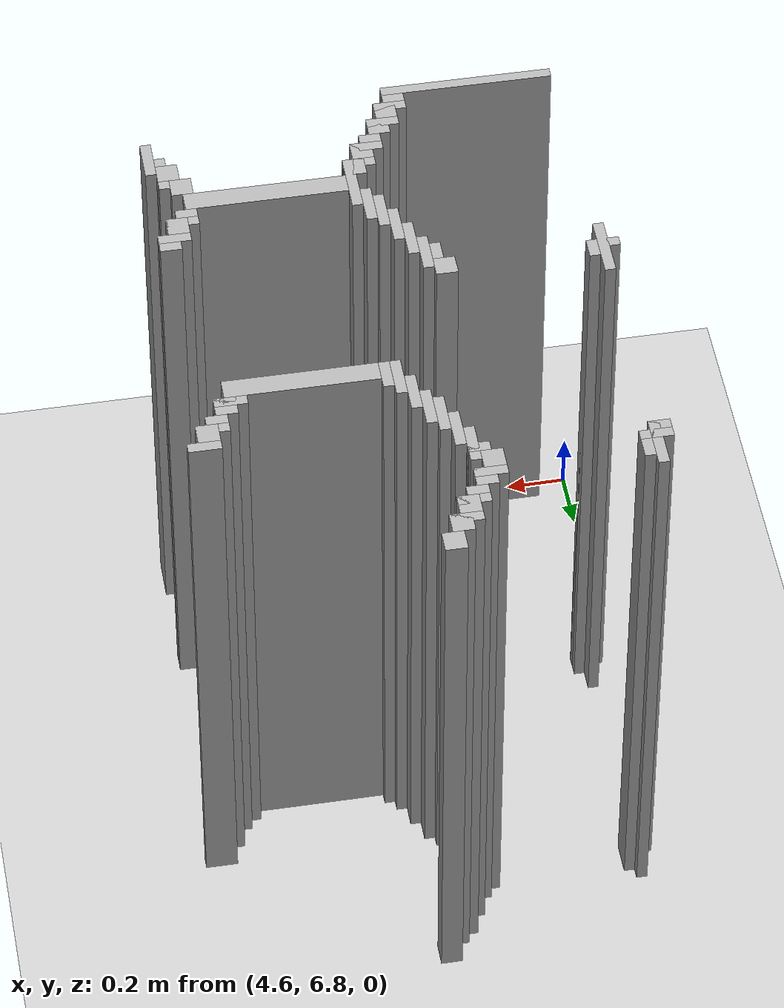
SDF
<sdf version="1.6">
 <world name="slam_world">
  <model name="ground_plane">
   <static>true</static>
   <link name="link">
    <collision name="collision">
     <geometry><plane><normal>0 0 1</normal><size>100 100</size></plane></geometry>
    </collision>
    <visual name="visual">
     <geometry><plane><normal>0 0 1</normal><size>100 100</size></plane></geometry>
     <material>
      <ambient>0.8 0.8 0.8 1</ambient>
      <diffuse>0.8 0.8 0.8 1</diffuse>
      <specular>0.8 0.8 0.8 1</specular>
     </material>
    </visual>
   </link>
  </model>
  <model name="wall_2872">
   <static>true</static>
   <pose>5.359628770301624 8.805104408352667 1.0 0 0 0</pose>
   <link name="link">
    <collision name="collision">
     <geometry><box><size>0.06960556844547564 0.06960556844547564 2.0</size></box></geometry>
    </collision>
    <visual name="visual">
     <geometry><box><size>0.06960556844547564 0.06960556844547564 2.0</size></box></geometry>
     <material><ambient>0.5 0.5 0.5 1</ambient><diffuse>0.7 0.7 0.7 1</diffuse></material>
    </visual>
   </link>
  </model>
  <model name="wall_2885">
   <static>true</static>
   <pose>5.324825986078886 8.735498839907192 1.0 0 0 0</pose>
   <link name="link">
    <collision name="collision">
     <geometry><box><size>0.06960556844547564 0.06960556844547564 2.0</size></box></geometry>
    </collision>
    <visual name="visual">
     <geometry><box><size>0.06960556844547564 0.06960556844547564 2.0</size></box></geometry>
     <material><ambient>0.5 0.5 0.5 1</ambient><diffuse>0.7 0.7 0.7 1</diffuse></material>
    </visual>
   </link>
  </model>
  <model name="wall_2898">
   <static>true</static>
   <pose>5.307424593967517 8.718097447795824 1.0 0 0 0</pose>
   <link name="link">
    <collision name="collision">
     <geometry><box><size>0.10440835266821345 0.03480278422273782 2.0</size></box></geometry>
    </collision>
    <visual name="visual">
     <geometry><box><size>0.10440835266821345 0.03480278422273782 2.0</size></box></geometry>
     <material><ambient>0.5 0.5 0.5 1</ambient><diffuse>0.7 0.7 0.7 1</diffuse></material>
    </visual>
   </link>
  </model>
  <model name="wall_2908">
   <static>true</static>
   <pose>5.290023201856148 8.665893271461716 1.0 0 0 0</pose>
   <link name="link">
    <collision name="collision">
     <geometry><box><size>0.06960556844547564 0.06960556844547564 2.0</size></box></geometry>
    </collision>
    <visual name="visual">
     <geometry><box><size>0.06960556844547564 0.06960556844547564 2.0</size></box></geometry>
     <material><ambient>0.5 0.5 0.5 1</ambient><diffuse>0.7 0.7 0.7 1</diffuse></material>
    </visual>
   </link>
  </model>
  <model name="wall_2920">
   <static>true</static>
   <pose>5.27262180974478 8.648491879350347 1.0 0 0 0</pose>
   <link name="link">
    <collision name="collision">
     <geometry><box><size>0.10440835266821345 0.03480278422273782 2.0</size></box></geometry>
    </collision>
    <visual name="visual">
     <geometry><box><size>0.10440835266821345 0.03480278422273782 2.0</size></box></geometry>
     <material><ambient>0.5 0.5 0.5 1</ambient><diffuse>0.7 0.7 0.7 1</diffuse></material>
    </visual>
   </link>
  </model>
  <model name="wall_2930">
   <static>true</static>
   <pose>5.25522041763341 8.61368909512761 1.0 0 0 0</pose>
   <link name="link">
    <collision name="collision">
     <geometry><box><size>0.06960556844547564 0.03480278422273782 2.0</size></box></geometry>
    </collision>
    <visual name="visual">
     <geometry><box><size>0.06960556844547564 0.03480278422273782 2.0</size></box></geometry>
     <material><ambient>0.5 0.5 0.5 1</ambient><diffuse>0.7 0.7 0.7 1</diffuse></material>
    </visual>
   </link>
  </model>
  <model name="wall_2938">
   <static>true</static>
   <pose>4.6809744779582365 8.509280742459396 1.0 0 0 0</pose>
   <link name="link">
    <collision name="collision">
     <geometry><box><size>0.03480278422273782 0.17401392111368907 2.0</size></box></geometry>
    </collision>
    <visual name="visual">
     <geometry><box><size>0.03480278422273782 0.17401392111368907 2.0</size></box></geometry>
     <material><ambient>0.5 0.5 0.5 1</ambient><diffuse>0.7 0.7 0.7 1</diffuse></material>
    </visual>
   </link>
  </model>
  <model name="wall_2939">
   <static>true</static>
   <pose>5.220417633410673 8.561484918793504 1.0 0 0 0</pose>
   <link name="link">
    <collision name="collision">
     <geometry><box><size>0.06960556844547564 0.06960556844547564 2.0</size></box></geometry>
    </collision>
    <visual name="visual">
     <geometry><box><size>0.06960556844547564 0.06960556844547564 2.0</size></box></geometry>
     <material><ambient>0.5 0.5 0.5 1</ambient><diffuse>0.7 0.7 0.7 1</diffuse></material>
    </visual>
   </link>
  </model>
  <model name="wall_2951">
   <static>true</static>
   <pose>4.715777262180974 8.509280742459396 1.0 0 0 0</pose>
   <link name="link">
    <collision name="collision">
     <geometry><box><size>0.03480278422273782 0.10440835266821345 2.0</size></box></geometry>
    </collision>
    <visual name="visual">
     <geometry><box><size>0.03480278422273782 0.10440835266821345 2.0</size></box></geometry>
     <material><ambient>0.5 0.5 0.5 1</ambient><diffuse>0.7 0.7 0.7 1</diffuse></material>
    </visual>
   </link>
  </model>
  <model name="wall_2952">
   <static>true</static>
   <pose>5.203016241299304 8.544083526682135 1.0 0 0 0</pose>
   <link name="link">
    <collision name="collision">
     <geometry><box><size>0.10440835266821345 0.03480278422273782 2.0</size></box></geometry>
    </collision>
    <visual name="visual">
     <geometry><box><size>0.10440835266821345 0.03480278422273782 2.0</size></box></geometry>
     <material><ambient>0.5 0.5 0.5 1</ambient><diffuse>0.7 0.7 0.7 1</diffuse></material>
    </visual>
   </link>
  </model>
  <model name="wall_2964">
   <static>true</static>
   <pose>5.185614849187935 8.491879350348027 1.0 0 0 0</pose>
   <link name="link">
    <collision name="collision">
     <geometry><box><size>0.06960556844547564 0.06960556844547564 2.0</size></box></geometry>
    </collision>
    <visual name="visual">
     <geometry><box><size>0.06960556844547564 0.06960556844547564 2.0</size></box></geometry>
     <material><ambient>0.5 0.5 0.5 1</ambient><diffuse>0.7 0.7 0.7 1</diffuse></material>
    </visual>
   </link>
  </model>
  <model name="wall_2976">
   <static>true</static>
   <pose>4.6809744779582365 8.474477958236658 1.0 0 0 0</pose>
   <link name="link">
    <collision name="collision">
     <geometry><box><size>0.10440835266821345 0.03480278422273782 2.0</size></box></geometry>
    </collision>
    <visual name="visual">
     <geometry><box><size>0.10440835266821345 0.03480278422273782 2.0</size></box></geometry>
     <material><ambient>0.5 0.5 0.5 1</ambient><diffuse>0.7 0.7 0.7 1</diffuse></material>
    </visual>
   </link>
  </model>
  <model name="wall_2977">
   <static>true</static>
   <pose>5.237819025522041 8.422273781902552 1.0 0 0 0</pose>
   <link name="link">
    <collision name="collision">
     <geometry><box><size>0.03480278422273782 0.13921113689095127 2.0</size></box></geometry>
    </collision>
    <visual name="visual">
     <geometry><box><size>0.03480278422273782 0.13921113689095127 2.0</size></box></geometry>
     <material><ambient>0.5 0.5 0.5 1</ambient><diffuse>0.7 0.7 0.7 1</diffuse></material>
    </visual>
   </link>
  </model>
  <model name="wall_2990">
   <static>true</static>
   <pose>4.663573085846868 8.43967517401392 1.0 0 0 0</pose>
   <link name="link">
    <collision name="collision">
     <geometry><box><size>0.06960556844547564 0.03480278422273782 2.0</size></box></geometry>
    </collision>
    <visual name="visual">
     <geometry><box><size>0.06960556844547564 0.03480278422273782 2.0</size></box></geometry>
     <material><ambient>0.5 0.5 0.5 1</ambient><diffuse>0.7 0.7 0.7 1</diffuse></material>
    </visual>
   </link>
  </model>
  <model name="wall_2991">
   <static>true</static>
   <pose>5.220417633410673 8.43967517401392 1.0 0 0 0</pose>
   <link name="link">
    <collision name="collision">
     <geometry><box><size>0.06960556844547564 0.03480278422273782 2.0</size></box></geometry>
    </collision>
    <visual name="visual">
     <geometry><box><size>0.06960556844547564 0.03480278422273782 2.0</size></box></geometry>
     <material><ambient>0.5 0.5 0.5 1</ambient><diffuse>0.7 0.7 0.7 1</diffuse></material>
    </visual>
   </link>
  </model>
  <model name="wall_3006">
   <static>true</static>
   <pose>5.27262180974478 8.352668213457076 1.0 0 0 0</pose>
   <link name="link">
    <collision name="collision">
     <geometry><box><size>0.03480278422273782 0.13921113689095127 2.0</size></box></geometry>
    </collision>
    <visual name="visual">
     <geometry><box><size>0.03480278422273782 0.13921113689095127 2.0</size></box></geometry>
     <material><ambient>0.5 0.5 0.5 1</ambient><diffuse>0.7 0.7 0.7 1</diffuse></material>
    </visual>
   </link>
  </model>
  <model name="wall_3021">
   <static>true</static>
   <pose>5.307424593967517 8.2830626450116 1.0 0 0 0</pose>
   <link name="link">
    <collision name="collision">
     <geometry><box><size>0.03480278422273782 0.13921113689095127 2.0</size></box></geometry>
    </collision>
    <visual name="visual">
     <geometry><box><size>0.03480278422273782 0.13921113689095127 2.0</size></box></geometry>
     <material><ambient>0.5 0.5 0.5 1</ambient><diffuse>0.7 0.7 0.7 1</diffuse></material>
    </visual>
   </link>
  </model>
  <model name="wall_3036">
   <static>true</static>
   <pose>5.342227378190255 8.248259860788863 1.0 0 0 0</pose>
   <link name="link">
    <collision name="collision">
     <geometry><box><size>0.03480278422273782 0.13921113689095127 2.0</size></box></geometry>
    </collision>
    <visual name="visual">
     <geometry><box><size>0.03480278422273782 0.13921113689095127 2.0</size></box></geometry>
     <material><ambient>0.5 0.5 0.5 1</ambient><diffuse>0.7 0.7 0.7 1</diffuse></material>
    </visual>
   </link>
  </model>
  <model name="wall_3037">
   <static>true</static>
   <pose>6.038283062645012 8.30046403712297 1.0 0 0 0</pose>
   <link name="link">
    <collision name="collision">
     <geometry><box><size>0.10440835266821345 0.03480278422273782 2.0</size></box></geometry>
    </collision>
    <visual name="visual">
     <geometry><box><size>0.10440835266821345 0.03480278422273782 2.0</size></box></geometry>
     <material><ambient>0.5 0.5 0.5 1</ambient><diffuse>0.7 0.7 0.7 1</diffuse></material>
    </visual>
   </link>
  </model>
  <model name="wall_3050">
   <static>true</static>
   <pose>6.020881670533642 8.248259860788863 1.0 0 0 0</pose>
   <link name="link">
    <collision name="collision">
     <geometry><box><size>0.06960556844547564 0.06960556844547564 2.0</size></box></geometry>
    </collision>
    <visual name="visual">
     <geometry><box><size>0.06960556844547564 0.06960556844547564 2.0</size></box></geometry>
     <material><ambient>0.5 0.5 0.5 1</ambient><diffuse>0.7 0.7 0.7 1</diffuse></material>
    </visual>
   </link>
  </model>
  <model name="wall_3061">
   <static>true</static>
   <pose>5.377030162412993 8.178654292343387 1.0 0 0 0</pose>
   <link name="link">
    <collision name="collision">
     <geometry><box><size>0.03480278422273782 0.13921113689095127 2.0</size></box></geometry>
    </collision>
    <visual name="visual">
     <geometry><box><size>0.03480278422273782 0.13921113689095127 2.0</size></box></geometry>
     <material><ambient>0.5 0.5 0.5 1</ambient><diffuse>0.7 0.7 0.7 1</diffuse></material>
    </visual>
   </link>
  </model>
  <model name="wall_3062">
   <static>true</static>
   <pose>6.003480278422273 8.230858468677495 1.0 0 0 0</pose>
   <link name="link">
    <collision name="collision">
     <geometry><box><size>0.10440835266821345 0.03480278422273782 2.0</size></box></geometry>
    </collision>
    <visual name="visual">
     <geometry><box><size>0.10440835266821345 0.03480278422273782 2.0</size></box></geometry>
     <material><ambient>0.5 0.5 0.5 1</ambient><diffuse>0.7 0.7 0.7 1</diffuse></material>
    </visual>
   </link>
  </model>
  <model name="wall_3075">
   <static>true</static>
   <pose>5.986078886310905 8.196055684454755 1.0 0 0 0</pose>
   <link name="link">
    <collision name="collision">
     <geometry><box><size>0.06960556844547564 0.03480278422273782 2.0</size></box></geometry>
    </collision>
    <visual name="visual">
     <geometry><box><size>0.06960556844547564 0.03480278422273782 2.0</size></box></geometry>
     <material><ambient>0.5 0.5 0.5 1</ambient><diffuse>0.7 0.7 0.7 1</diffuse></material>
    </visual>
   </link>
  </model>
  <model name="wall_3085">
   <static>true</static>
   <pose>5.41183294663573 8.109048723897912 1.0 0 0 0</pose>
   <link name="link">
    <collision name="collision">
     <geometry><box><size>0.03480278422273782 0.13921113689095127 2.0</size></box></geometry>
    </collision>
    <visual name="visual">
     <geometry><box><size>0.03480278422273782 0.13921113689095127 2.0</size></box></geometry>
     <material><ambient>0.5 0.5 0.5 1</ambient><diffuse>0.7 0.7 0.7 1</diffuse></material>
    </visual>
   </link>
  </model>
  <model name="wall_3086">
   <static>true</static>
   <pose>5.951276102088166 8.14385150812065 1.0 0 0 0</pose>
   <link name="link">
    <collision name="collision">
     <geometry><box><size>0.06960556844547564 0.06960556844547564 2.0</size></box></geometry>
    </collision>
    <visual name="visual">
     <geometry><box><size>0.06960556844547564 0.06960556844547564 2.0</size></box></geometry>
     <material><ambient>0.5 0.5 0.5 1</ambient><diffuse>0.7 0.7 0.7 1</diffuse></material>
    </visual>
   </link>
  </model>
  <model name="wall_3099">
   <static>true</static>
   <pose>5.4466357308584685 8.091647331786543 1.0 0 0 0</pose>
   <link name="link">
    <collision name="collision">
     <geometry><box><size>0.03480278422273782 0.10440835266821345 2.0</size></box></geometry>
    </collision>
    <visual name="visual">
     <geometry><box><size>0.03480278422273782 0.10440835266821345 2.0</size></box></geometry>
     <material><ambient>0.5 0.5 0.5 1</ambient><diffuse>0.7 0.7 0.7 1</diffuse></material>
    </visual>
   </link>
  </model>
  <model name="wall_3100">
   <static>true</static>
   <pose>5.933874709976798 8.12645011600928 1.0 0 0 0</pose>
   <link name="link">
    <collision name="collision">
     <geometry><box><size>0.10440835266821345 0.03480278422273782 2.0</size></box></geometry>
    </collision>
    <visual name="visual">
     <geometry><box><size>0.10440835266821345 0.03480278422273782 2.0</size></box></geometry>
     <material><ambient>0.5 0.5 0.5 1</ambient><diffuse>0.7 0.7 0.7 1</diffuse></material>
    </visual>
   </link>
  </model>
  <model name="wall_3113">
   <static>true</static>
   <pose>5.707656612529002 8.074245939675174 1.0 0 0 0</pose>
   <link name="link">
    <collision name="collision">
     <geometry><box><size>0.4872389791183295 0.06960556844547564 2.0</size></box></geometry>
    </collision>
    <visual name="visual">
     <geometry><box><size>0.4872389791183295 0.06960556844547564 2.0</size></box></geometry>
     <material><ambient>0.5 0.5 0.5 1</ambient><diffuse>0.7 0.7 0.7 1</diffuse></material>
    </visual>
   </link>
  </model>
  <model name="wall_3239">
   <static>true</static>
   <pose>4.6809744779582365 7.65661252900232 1.0 0 0 0</pose>
   <link name="link">
    <collision name="collision">
     <geometry><box><size>0.03480278422273782 0.2088167053364269 2.0</size></box></geometry>
    </collision>
    <visual name="visual">
     <geometry><box><size>0.03480278422273782 0.2088167053364269 2.0</size></box></geometry>
     <material><ambient>0.5 0.5 0.5 1</ambient><diffuse>0.7 0.7 0.7 1</diffuse></material>
    </visual>
   </link>
  </model>
  <model name="wall_3264">
   <static>true</static>
   <pose>4.715777262180974 7.65661252900232 1.0 0 0 0</pose>
   <link name="link">
    <collision name="collision">
     <geometry><box><size>0.03480278422273782 0.06960556844547564 2.0</size></box></geometry>
    </collision>
    <visual name="visual">
     <geometry><box><size>0.03480278422273782 0.06960556844547564 2.0</size></box></geometry>
     <material><ambient>0.5 0.5 0.5 1</ambient><diffuse>0.7 0.7 0.7 1</diffuse></material>
    </visual>
   </link>
  </model>
  <model name="wall_3265">
   <static>true</static>
   <pose>5.185614849187935 7.65661252900232 1.0 0 0 0</pose>
   <link name="link">
    <collision name="collision">
     <geometry><box><size>0.06960556844547564 0.06960556844547564 2.0</size></box></geometry>
    </collision>
    <visual name="visual">
     <geometry><box><size>0.06960556844547564 0.06960556844547564 2.0</size></box></geometry>
     <material><ambient>0.5 0.5 0.5 1</ambient><diffuse>0.7 0.7 0.7 1</diffuse></material>
    </visual>
   </link>
  </model>
  <model name="wall_3280">
   <static>true</static>
   <pose>4.6809744779582365 7.6392111368909505 1.0 0 0 0</pose>
   <link name="link">
    <collision name="collision">
     <geometry><box><size>0.10440835266821345 0.03480278422273782 2.0</size></box></geometry>
    </collision>
    <visual name="visual">
     <geometry><box><size>0.10440835266821345 0.03480278422273782 2.0</size></box></geometry>
     <material><ambient>0.5 0.5 0.5 1</ambient><diffuse>0.7 0.7 0.7 1</diffuse></material>
    </visual>
   </link>
  </model>
  <model name="wall_3281">
   <static>true</static>
   <pose>5.237819025522041 7.587006960556844 1.0 0 0 0</pose>
   <link name="link">
    <collision name="collision">
     <geometry><box><size>0.03480278422273782 0.13921113689095127 2.0</size></box></geometry>
    </collision>
    <visual name="visual">
     <geometry><box><size>0.03480278422273782 0.13921113689095127 2.0</size></box></geometry>
     <material><ambient>0.5 0.5 0.5 1</ambient><diffuse>0.7 0.7 0.7 1</diffuse></material>
    </visual>
   </link>
  </model>
  <model name="wall_3296">
   <static>true</static>
   <pose>5.220417633410673 7.587006960556844 1.0 0 0 0</pose>
   <link name="link">
    <collision name="collision">
     <geometry><box><size>0.06960556844547564 0.06960556844547564 2.0</size></box></geometry>
    </collision>
    <visual name="visual">
     <geometry><box><size>0.06960556844547564 0.06960556844547564 2.0</size></box></geometry>
     <material><ambient>0.5 0.5 0.5 1</ambient><diffuse>0.7 0.7 0.7 1</diffuse></material>
    </visual>
   </link>
  </model>
  <model name="wall_3312">
   <static>true</static>
   <pose>5.27262180974478 7.517401392111369 1.0 0 0 0</pose>
   <link name="link">
    <collision name="collision">
     <geometry><box><size>0.03480278422273782 0.13921113689095127 2.0</size></box></geometry>
    </collision>
    <visual name="visual">
     <geometry><box><size>0.03480278422273782 0.13921113689095127 2.0</size></box></geometry>
     <material><ambient>0.5 0.5 0.5 1</ambient><diffuse>0.7 0.7 0.7 1</diffuse></material>
    </visual>
   </link>
  </model>
  <model name="wall_3339">
   <static>true</static>
   <pose>5.307424593967517 7.447795823665893 1.0 0 0 0</pose>
   <link name="link">
    <collision name="collision">
     <geometry><box><size>0.03480278422273782 0.13921113689095127 2.0</size></box></geometry>
    </collision>
    <visual name="visual">
     <geometry><box><size>0.03480278422273782 0.13921113689095127 2.0</size></box></geometry>
     <material><ambient>0.5 0.5 0.5 1</ambient><diffuse>0.7 0.7 0.7 1</diffuse></material>
    </visual>
   </link>
  </model>
  <model name="wall_3355">
   <static>true</static>
   <pose>5.342227378190255 7.378190255220417 1.0 0 0 0</pose>
   <link name="link">
    <collision name="collision">
     <geometry><box><size>0.03480278422273782 0.13921113689095127 2.0</size></box></geometry>
    </collision>
    <visual name="visual">
     <geometry><box><size>0.03480278422273782 0.13921113689095127 2.0</size></box></geometry>
     <material><ambient>0.5 0.5 0.5 1</ambient><diffuse>0.7 0.7 0.7 1</diffuse></material>
    </visual>
   </link>
  </model>
  <model name="wall_3356">
   <static>true</static>
   <pose>6.020881670533642 7.412993039443156 1.0 0 0 0</pose>
   <link name="link">
    <collision name="collision">
     <geometry><box><size>0.06960556844547564 0.06960556844547564 2.0</size></box></geometry>
    </collision>
    <visual name="visual">
     <geometry><box><size>0.06960556844547564 0.06960556844547564 2.0</size></box></geometry>
     <material><ambient>0.5 0.5 0.5 1</ambient><diffuse>0.7 0.7 0.7 1</diffuse></material>
    </visual>
   </link>
  </model>
  <model name="wall_3371">
   <static>true</static>
   <pose>5.377030162412993 7.34338747099768 1.0 0 0 0</pose>
   <link name="link">
    <collision name="collision">
     <geometry><box><size>0.03480278422273782 0.13921113689095127 2.0</size></box></geometry>
    </collision>
    <visual name="visual">
     <geometry><box><size>0.03480278422273782 0.13921113689095127 2.0</size></box></geometry>
     <material><ambient>0.5 0.5 0.5 1</ambient><diffuse>0.7 0.7 0.7 1</diffuse></material>
    </visual>
   </link>
  </model>
  <model name="wall_3372">
   <static>true</static>
   <pose>6.003480278422273 7.395591647331786 1.0 0 0 0</pose>
   <link name="link">
    <collision name="collision">
     <geometry><box><size>0.10440835266821345 0.03480278422273782 2.0</size></box></geometry>
    </collision>
    <visual name="visual">
     <geometry><box><size>0.10440835266821345 0.03480278422273782 2.0</size></box></geometry>
     <material><ambient>0.5 0.5 0.5 1</ambient><diffuse>0.7 0.7 0.7 1</diffuse></material>
    </visual>
   </link>
  </model>
  <model name="wall_3385">
   <static>true</static>
   <pose>5.986078886310905 7.34338747099768 1.0 0 0 0</pose>
   <link name="link">
    <collision name="collision">
     <geometry><box><size>0.06960556844547564 0.06960556844547564 2.0</size></box></geometry>
    </collision>
    <visual name="visual">
     <geometry><box><size>0.06960556844547564 0.06960556844547564 2.0</size></box></geometry>
     <material><ambient>0.5 0.5 0.5 1</ambient><diffuse>0.7 0.7 0.7 1</diffuse></material>
    </visual>
   </link>
  </model>
  <model name="wall_3396">
   <static>true</static>
   <pose>5.41183294663573 7.238979118329466 1.0 0 0 0</pose>
   <link name="link">
    <collision name="collision">
     <geometry><box><size>0.03480278422273782 0.2088167053364269 2.0</size></box></geometry>
    </collision>
    <visual name="visual">
     <geometry><box><size>0.03480278422273782 0.2088167053364269 2.0</size></box></geometry>
     <material><ambient>0.5 0.5 0.5 1</ambient><diffuse>0.7 0.7 0.7 1</diffuse></material>
    </visual>
   </link>
  </model>
  <model name="wall_3397">
   <static>true</static>
   <pose>5.968677494199536 7.32598607888631 1.0 0 0 0</pose>
   <link name="link">
    <collision name="collision">
     <geometry><box><size>0.10440835266821345 0.03480278422273782 2.0</size></box></geometry>
    </collision>
    <visual name="visual">
     <geometry><box><size>0.10440835266821345 0.03480278422273782 2.0</size></box></geometry>
     <material><ambient>0.5 0.5 0.5 1</ambient><diffuse>0.7 0.7 0.7 1</diffuse></material>
    </visual>
   </link>
  </model>
  <model name="wall_3410">
   <static>true</static>
   <pose>5.951276102088166 7.291183294663573 1.0 0 0 0</pose>
   <link name="link">
    <collision name="collision">
     <geometry><box><size>0.06960556844547564 0.03480278422273782 2.0</size></box></geometry>
    </collision>
    <visual name="visual">
     <geometry><box><size>0.06960556844547564 0.03480278422273782 2.0</size></box></geometry>
     <material><ambient>0.5 0.5 0.5 1</ambient><diffuse>0.7 0.7 0.7 1</diffuse></material>
    </visual>
   </link>
  </model>
  <model name="wall_3419">
   <static>true</static>
   <pose>5.690255220417633 7.238979118329466 1.0 0 0 0</pose>
   <link name="link">
    <collision name="collision">
     <geometry><box><size>0.5220417633410672 0.06960556844547564 2.0</size></box></geometry>
    </collision>
    <visual name="visual">
     <geometry><box><size>0.5220417633410672 0.06960556844547564 2.0</size></box></geometry>
     <material><ambient>0.5 0.5 0.5 1</ambient><diffuse>0.7 0.7 0.7 1</diffuse></material>
    </visual>
   </link>
  </model>
  <model name="wall_3432">
   <static>true</static>
   <pose>5.3944315545243615 7.16937354988399 1.0 0 0 0</pose>
   <link name="link">
    <collision name="collision">
     <geometry><box><size>0.06960556844547564 0.06960556844547564 2.0</size></box></geometry>
    </collision>
    <visual name="visual">
     <geometry><box><size>0.06960556844547564 0.06960556844547564 2.0</size></box></geometry>
     <material><ambient>0.5 0.5 0.5 1</ambient><diffuse>0.7 0.7 0.7 1</diffuse></material>
    </visual>
   </link>
  </model>
  <model name="wall_3433">
   <static>true</static>
   <pose>5.951276102088166 7.16937354988399 1.0 0 0 0</pose>
   <link name="link">
    <collision name="collision">
     <geometry><box><size>0.06960556844547564 0.06960556844547564 2.0</size></box></geometry>
    </collision>
    <visual name="visual">
     <geometry><box><size>0.06960556844547564 0.06960556844547564 2.0</size></box></geometry>
     <material><ambient>0.5 0.5 0.5 1</ambient><diffuse>0.7 0.7 0.7 1</diffuse></material>
    </visual>
   </link>
  </model>
  <model name="wall_3444">
   <static>true</static>
   <pose>5.377030162412993 7.151972157772621 1.0 0 0 0</pose>
   <link name="link">
    <collision name="collision">
     <geometry><box><size>0.10440835266821345 0.03480278422273782 2.0</size></box></geometry>
    </collision>
    <visual name="visual">
     <geometry><box><size>0.10440835266821345 0.03480278422273782 2.0</size></box></geometry>
     <material><ambient>0.5 0.5 0.5 1</ambient><diffuse>0.7 0.7 0.7 1</diffuse></material>
    </visual>
   </link>
  </model>
  <model name="wall_3445">
   <static>true</static>
   <pose>6.003480278422273 7.099767981438514 1.0 0 0 0</pose>
   <link name="link">
    <collision name="collision">
     <geometry><box><size>0.03480278422273782 0.13921113689095127 2.0</size></box></geometry>
    </collision>
    <visual name="visual">
     <geometry><box><size>0.03480278422273782 0.13921113689095127 2.0</size></box></geometry>
     <material><ambient>0.5 0.5 0.5 1</ambient><diffuse>0.7 0.7 0.7 1</diffuse></material>
    </visual>
   </link>
  </model>
  <model name="wall_3456">
   <static>true</static>
   <pose>5.359628770301624 7.099767981438514 1.0 0 0 0</pose>
   <link name="link">
    <collision name="collision">
     <geometry><box><size>0.06960556844547564 0.06960556844547564 2.0</size></box></geometry>
    </collision>
    <visual name="visual">
     <geometry><box><size>0.06960556844547564 0.06960556844547564 2.0</size></box></geometry>
     <material><ambient>0.5 0.5 0.5 1</ambient><diffuse>0.7 0.7 0.7 1</diffuse></material>
    </visual>
   </link>
  </model>
  <model name="wall_3457">
   <static>true</static>
   <pose>5.986078886310905 7.099767981438514 1.0 0 0 0</pose>
   <link name="link">
    <collision name="collision">
     <geometry><box><size>0.06960556844547564 0.06960556844547564 2.0</size></box></geometry>
    </collision>
    <visual name="visual">
     <geometry><box><size>0.06960556844547564 0.06960556844547564 2.0</size></box></geometry>
     <material><ambient>0.5 0.5 0.5 1</ambient><diffuse>0.7 0.7 0.7 1</diffuse></material>
    </visual>
   </link>
  </model>
  <model name="wall_3468">
   <static>true</static>
   <pose>5.342227378190255 7.082366589327146 1.0 0 0 0</pose>
   <link name="link">
    <collision name="collision">
     <geometry><box><size>0.10440835266821345 0.03480278422273782 2.0</size></box></geometry>
    </collision>
    <visual name="visual">
     <geometry><box><size>0.10440835266821345 0.03480278422273782 2.0</size></box></geometry>
     <material><ambient>0.5 0.5 0.5 1</ambient><diffuse>0.7 0.7 0.7 1</diffuse></material>
    </visual>
   </link>
  </model>
  <model name="wall_3469">
   <static>true</static>
   <pose>6.038283062645012 7.03016241299304 1.0 0 0 0</pose>
   <link name="link">
    <collision name="collision">
     <geometry><box><size>0.03480278422273782 0.13921113689095127 2.0</size></box></geometry>
    </collision>
    <visual name="visual">
     <geometry><box><size>0.03480278422273782 0.13921113689095127 2.0</size></box></geometry>
     <material><ambient>0.5 0.5 0.5 1</ambient><diffuse>0.7 0.7 0.7 1</diffuse></material>
    </visual>
   </link>
  </model>
  <model name="wall_3478">
   <static>true</static>
   <pose>5.324825986078886 7.047563805104408 1.0 0 0 0</pose>
   <link name="link">
    <collision name="collision">
     <geometry><box><size>0.06960556844547564 0.03480278422273782 2.0</size></box></geometry>
    </collision>
    <visual name="visual">
     <geometry><box><size>0.06960556844547564 0.03480278422273782 2.0</size></box></geometry>
     <material><ambient>0.5 0.5 0.5 1</ambient><diffuse>0.7 0.7 0.7 1</diffuse></material>
    </visual>
   </link>
  </model>
  <model name="wall_3487">
   <static>true</static>
   <pose>5.290023201856148 6.995359628770301 1.0 0 0 0</pose>
   <link name="link">
    <collision name="collision">
     <geometry><box><size>0.06960556844547564 0.06960556844547564 2.0</size></box></geometry>
    </collision>
    <visual name="visual">
     <geometry><box><size>0.06960556844547564 0.06960556844547564 2.0</size></box></geometry>
     <material><ambient>0.5 0.5 0.5 1</ambient><diffuse>0.7 0.7 0.7 1</diffuse></material>
    </visual>
   </link>
  </model>
  <model name="wall_3497">
   <static>true</static>
   <pose>5.27262180974478 6.977958236658933 1.0 0 0 0</pose>
   <link name="link">
    <collision name="collision">
     <geometry><box><size>0.10440835266821345 0.03480278422273782 2.0</size></box></geometry>
    </collision>
    <visual name="visual">
     <geometry><box><size>0.10440835266821345 0.03480278422273782 2.0</size></box></geometry>
     <material><ambient>0.5 0.5 0.5 1</ambient><diffuse>0.7 0.7 0.7 1</diffuse></material>
    </visual>
   </link>
  </model>
  <model name="wall_3506">
   <static>true</static>
   <pose>5.25522041763341 6.9257540603248255 1.0 0 0 0</pose>
   <link name="link">
    <collision name="collision">
     <geometry><box><size>0.06960556844547564 0.06960556844547564 2.0</size></box></geometry>
    </collision>
    <visual name="visual">
     <geometry><box><size>0.06960556844547564 0.06960556844547564 2.0</size></box></geometry>
     <material><ambient>0.5 0.5 0.5 1</ambient><diffuse>0.7 0.7 0.7 1</diffuse></material>
    </visual>
   </link>
  </model>
  <model name="wall_3518">
   <static>true</static>
   <pose>5.237819025522041 6.908352668213457 1.0 0 0 0</pose>
   <link name="link">
    <collision name="collision">
     <geometry><box><size>0.10440835266821345 0.03480278422273782 2.0</size></box></geometry>
    </collision>
    <visual name="visual">
     <geometry><box><size>0.10440835266821345 0.03480278422273782 2.0</size></box></geometry>
     <material><ambient>0.5 0.5 0.5 1</ambient><diffuse>0.7 0.7 0.7 1</diffuse></material>
    </visual>
   </link>
  </model>
  <model name="wall_3528">
   <static>true</static>
   <pose>5.220417633410673 6.85614849187935 1.0 0 0 0</pose>
   <link name="link">
    <collision name="collision">
     <geometry><box><size>0.06960556844547564 0.06960556844547564 2.0</size></box></geometry>
    </collision>
    <visual name="visual">
     <geometry><box><size>0.06960556844547564 0.06960556844547564 2.0</size></box></geometry>
     <material><ambient>0.5 0.5 0.5 1</ambient><diffuse>0.7 0.7 0.7 1</diffuse></material>
    </visual>
   </link>
  </model>
  <model name="wall_3536">
   <static>true</static>
   <pose>4.976798143851508 6.838747099767981 1.0 0 0 0</pose>
   <link name="link">
    <collision name="collision">
     <geometry><box><size>0.5568445475638051 0.03480278422273782 2.0</size></box></geometry>
    </collision>
    <visual name="visual">
     <geometry><box><size>0.5568445475638051 0.03480278422273782 2.0</size></box></geometry>
     <material><ambient>0.5 0.5 0.5 1</ambient><diffuse>0.7 0.7 0.7 1</diffuse></material>
    </visual>
   </link>
  </model>
 </world>
</sdf>
